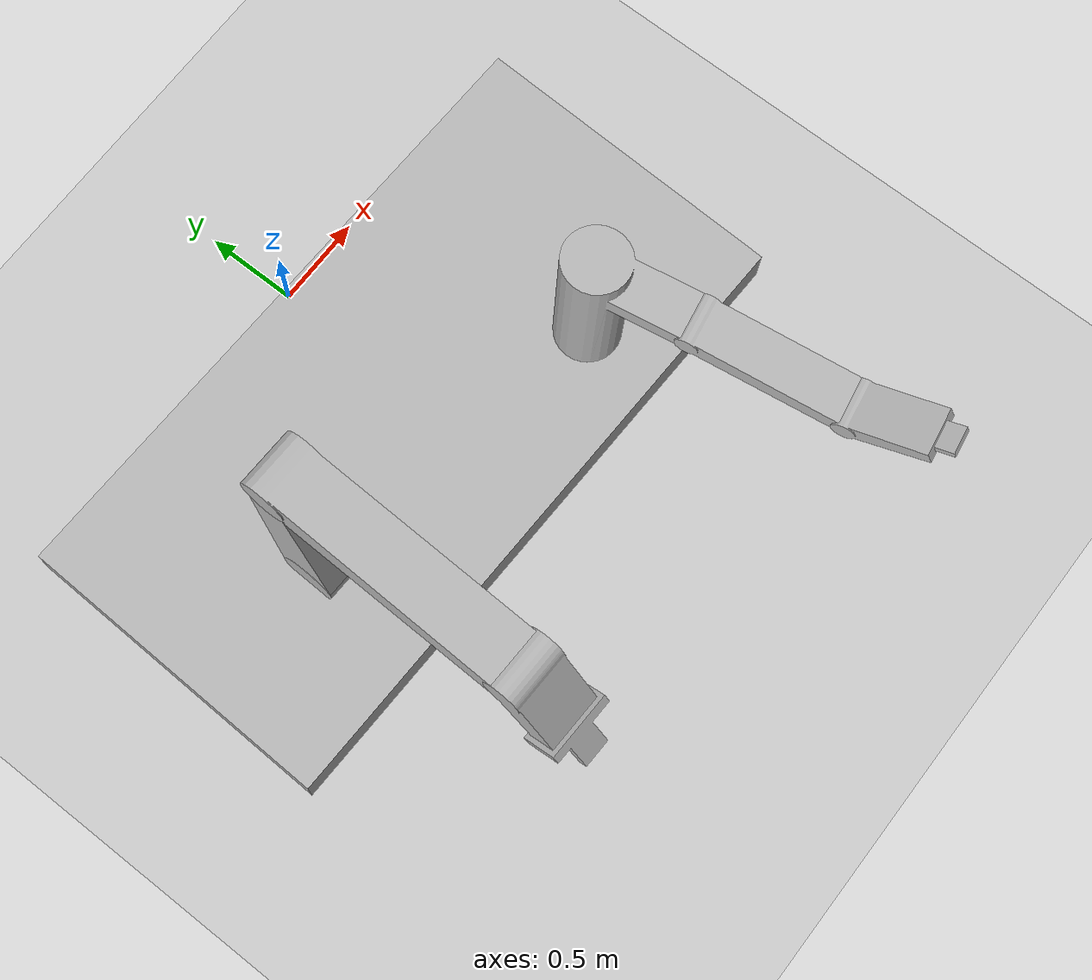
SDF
<sdf version="1.6">
 <world name="default">
  <light name="sun" type="directional">
   <pose>0 0 10 0 -0 0</pose>
   <diffuse>0.8 0.8 0.8 1</diffuse>
   <specular>0.2 0.2 0.2 1</specular>
   <attenuation>
    <range>1000</range>
    <constant>0.9</constant>
    <linear>0.01</linear>
    <quadratic>0.001</quadratic>
   </attenuation>
   <direction>-0.5 0.1 -0.9</direction>
  </light>
  <gravity>0 0 -9.8</gravity>
  <magnetic_field>6e-06 2.3e-05 -4.2e-05</magnetic_field>
  <atmosphere type="adiabatic"/>
  <physics name="default_physics" default="0" type="ode">
   <max_step_size>0.001</max_step_size>
   <real_time_factor>1</real_time_factor>
   <real_time_update_rate>1000</real_time_update_rate>
  </physics>
  <scene><ambient>0.4 0.4 0.4 1</ambient><background>0.7 0.7 0.7 1</background><shadows>1</shadows></scene>
  <spherical_coordinates>
   <surface_model>EARTH_WGS84</surface_model>
   <latitude_deg>0</latitude_deg>
   <longitude_deg>0</longitude_deg>
   <elevation>0</elevation>
   <heading_deg>0</heading_deg>
  </spherical_coordinates>
  <model name="my_robot_description">
   <link name="base_link">
    <inertial>
     <pose>-0.002316 -0.002634 0.000848 0 -0 0</pose>
     <mass>100.24</mass>
     <inertia>
      <ixx>2.31977</ixx>
      <ixy>-0.254733</ixy>
      <ixz>0.08206</ixz>
      <iyy>2.25405</iyy>
      <iyz>0.0933259</iyz>
      <izz>2.51369</izz>
     </inertia>
    </inertial>
    <collision name="base_link_collision">
     <geometry>
      <mesh><scale>1 1 1</scale><uri>/home/chuyu/robotic/src/my_robot_description/meshes/base_link.STL</uri></mesh>
     </geometry>
    </collision>
    <collision name="base_link_fixed_joint_lump__basejoint_collision_1">
     <pose>-0.967213 -1.1 0.354356 1.5708 -0 1.5708</pose>
     <geometry>
      <mesh><scale>1 1 1</scale><uri>/home/chuyu/robotic/src/my_robot_description/meshes/basejoint.STL</uri></mesh>
     </geometry>
    </collision>
    <visual name="base_link_visual">
     <geometry>
      <mesh><scale>1 1 1</scale><uri>/home/chuyu/robotic/src/my_robot_description/meshes/base_link.STL</uri></mesh>
     </geometry>
    </visual>
    <visual name="base_link_fixed_joint_lump__basejoint_visual_1">
     <pose>-0.967213 -1.1 0.354356 1.5708 -0 1.5708</pose>
     <geometry>
      <mesh><scale>1 1 1</scale><uri>/home/chuyu/robotic/src/my_robot_description/meshes/basejoint.STL</uri></mesh>
     </geometry>
    </visual>
   </link>
   <link name="sensor_link1">
    <pose>-0.967213 -1.1 0.354356 1.5708 -0.141193 -1.5708</pose>
    <inertial>
     <mass>0.8</mass>
     <inertia><ixx>1</ixx><ixy>0</ixy><ixz>0</ixz><iyy>1</iyy><iyz>0</iyz><izz>1</izz></inertia>
    </inertial>
    <collision name="sensor_link1_collision">
     <geometry>
      <mesh>
       <scale>1 1 1</scale>
       <uri>/home/chuyu/robotic/src/my_robot_description/meshes/sensor_link1.STL</uri>
      </mesh>
     </geometry>
    </collision>
    <visual name="sensor_link1_visual">
     <geometry>
      <mesh>
       <scale>1 1 1</scale>
       <uri>/home/chuyu/robotic/src/my_robot_description/meshes/sensor_link1.STL</uri>
      </mesh>
     </geometry>
    </visual>
   </link>
   <joint name="sensor_joint1" type="revolute">
    <child>sensor_link1</child>
    <parent>base_link</parent>
    <axis>
     <xyz>-1 -1e-06 -7e-06</xyz>
     <limit><lower>-3.142</lower><upper>3.142</upper><effort>30</effort><velocity>0.5</velocity></limit>
     <dynamics><spring_reference>0</spring_reference><spring_stiffness>0</spring_stiffness></dynamics>
     <use_parent_model_frame>1</use_parent_model_frame>
    </axis>
   </joint>
   <link name="sensor_link2">
    <pose>-0.967221 -0.949313 1.39884 1.57097 1.52871 -1.57062</pose>
    <inertial>
     <mass>1.11</mass>
     <inertia><ixx>1</ixx><ixy>0</ixy><ixz>0</ixz><iyy>1</iyy><iyz>0</iyz><izz>1</izz></inertia>
    </inertial>
    <collision name="sensor_link2_collision">
     <geometry>
      <mesh>
       <scale>1 1 1</scale>
       <uri>/home/chuyu/robotic/src/my_robot_description/meshes/sensor_link2.STL</uri>
      </mesh>
     </geometry>
    </collision>
    <visual name="sensor_link2_visual">
     <geometry>
      <mesh>
       <scale>1 1 1</scale>
       <uri>/home/chuyu/robotic/src/my_robot_description/meshes/sensor_link2.STL</uri>
      </mesh>
     </geometry>
    </visual>
   </link>
   <joint name="sensor_joint2" type="revolute">
    <child>sensor_link2</child>
    <parent>sensor_link1</parent>
    <axis>
     <xyz>-1 -1e-06 -7e-06</xyz>
     <limit><lower>-3.142</lower><upper>3.142</upper><effort>30</effort><velocity>0.5</velocity></limit>
     <dynamics><spring_reference>0</spring_reference><spring_stiffness>0</spring_stiffness></dynamics>
     <use_parent_model_frame>1</use_parent_model_frame>
    </axis>
   </joint>
   <link name="sensor_link3">
    <pose>-0.96722 -2.29062 1.45533 -1.57078 -0.642893 -1.5708</pose>
    <inertial>
     <mass>0.31</mass>
     <inertia><ixx>1</ixx><ixy>0</ixy><ixz>0</ixz><iyy>1</iyy><iyz>0</iyz><izz>1</izz></inertia>
    </inertial>
    <collision name="sensor_link3_collision">
     <geometry>
      <mesh>
       <scale>1 1 1</scale>
       <uri>/home/chuyu/robotic/src/my_robot_description/meshes/sensor_link3.STL</uri>
      </mesh>
     </geometry>
    </collision>
    <visual name="sensor_link3_visual">
     <geometry>
      <mesh>
       <scale>1 1 1</scale>
       <uri>/home/chuyu/robotic/src/my_robot_description/meshes/sensor_link3.STL</uri>
      </mesh>
     </geometry>
    </visual>
   </link>
   <joint name="sensor_joint3" type="revolute">
    <child>sensor_link3</child>
    <parent>sensor_link2</parent>
    <axis>
     <xyz>1 5e-06 1.3e-05</xyz>
     <limit><lower>-3.142</lower><upper>3.142</upper><effort>30</effort><velocity>0.5</velocity></limit>
     <dynamics><spring_reference>0</spring_reference><spring_stiffness>0</spring_stiffness></dynamics>
     <use_parent_model_frame>1</use_parent_model_frame>
    </axis>
   </joint>
   <link name="sensor_endeffector">
    <pose>-0.932215 -2.48045 1.20191 2.49911 -1.5e-05 2e-06</pose>
    <inertial>
     <mass>0.075</mass>
     <inertia><ixx>1</ixx><ixy>0</ixy><ixz>0</ixz><iyy>1</iyy><iyz>0</iyz><izz>1</izz></inertia>
    </inertial>
    <collision name="sensor_endeffector_collision">
     <geometry>
      <mesh>
       <scale>1 1 1</scale>
       <uri>/home/chuyu/robotic/src/my_robot_description/meshes/sensor_endeffector.STL</uri>
      </mesh>
     </geometry>
    </collision>
    <visual name="sensor_endeffector_visual">
     <geometry>
      <mesh>
       <scale>1 1 1</scale>
       <uri>/home/chuyu/robotic/src/my_robot_description/meshes/sensor_endeffector.STL</uri>
      </mesh>
     </geometry>
    </visual>
   </link>
   <joint name="sensor_joint4" type="prismatic">
    <child>sensor_endeffector</child>
    <parent>sensor_link3</parent>
    <axis>
     <xyz>1.4e-05 -0.599184 -0.800611</xyz>
     <limit><lower>0</lower><upper>0.1</upper><effort>30</effort><velocity>0.5</velocity></limit>
     <dynamics><spring_reference>0</spring_reference><spring_stiffness>0</spring_stiffness></dynamics>
     <use_parent_model_frame>1</use_parent_model_frame>
    </axis>
   </joint>
   <link name="water_link1">
    <pose>0.78379 -1.3125 0.2 0 -0 1.774</pose>
    <inertial>
     <mass>1.35</mass>
     <inertia><ixx>1</ixx><ixy>0</ixy><ixz>0</ixz><iyy>1</iyy><iyz>0</iyz><izz>1</izz></inertia>
    </inertial>
    <collision name="water_link1_collision">
     <geometry>
      <mesh>
       <scale>1 1 1</scale>
       <uri>/home/chuyu/robotic/src/my_robot_description/meshes/water_link1.STL</uri>
      </mesh>
     </geometry>
    </collision>
    <visual name="water_link1_visual">
     <geometry>
      <mesh>
       <scale>1 1 1</scale>
       <uri>/home/chuyu/robotic/src/my_robot_description/meshes/water_link1.STL</uri>
      </mesh>
     </geometry>
    </visual>
   </link>
   <joint name="water_joint1" type="revolute">
    <child>water_link1</child>
    <parent>base_link</parent>
    <axis>
     <xyz>0 0 1</xyz>
     <limit><lower>-1.047</lower><upper>1.047</upper><effort>30</effort><velocity>0.5</velocity></limit>
     <dynamics><spring_reference>0</spring_reference><spring_stiffness>0</spring_stiffness></dynamics>
     <use_parent_model_frame>1</use_parent_model_frame>
    </axis>
   </joint>
   <link name="water_link2">
    <pose>0.892262 -1.83894 1.05 1.5708 0.078326 -1.3676</pose>
    <inertial>
     <mass>0.285</mass>
     <inertia><ixx>1</ixx><ixy>0</ixy><ixz>0</ixz><iyy>1</iyy><iyz>0</iyz><izz>1</izz></inertia>
    </inertial>
    <collision name="water_link2_collision">
     <geometry>
      <mesh>
       <scale>1 1 1</scale>
       <uri>/home/chuyu/robotic/src/my_robot_description/meshes/water_link2.STL</uri>
      </mesh>
     </geometry>
    </collision>
    <visual name="water_link2_visual">
     <geometry>
      <mesh>
       <scale>1 1 1</scale>
       <uri>/home/chuyu/robotic/src/my_robot_description/meshes/water_link2.STL</uri>
      </mesh>
     </geometry>
    </visual>
   </link>
   <joint name="water_joint2" type="revolute">
    <child>water_link2</child>
    <parent>water_link1</parent>
    <axis>
     <xyz>-0.979427 -0.201801 -4e-06</xyz>
     <limit><lower>-1e+16</lower><upper>1e+16</upper></limit>
     <dynamics><spring_reference>0</spring_reference><spring_stiffness>0</spring_stiffness></dynamics>
     <use_parent_model_frame>1</use_parent_model_frame>
    </axis>
   </joint>
   <link name="water_link3">
    <pose>1.05623 -2.63477 0.987563 -1.99806 -4e-06 0.2032</pose>
    <inertial>
     <mass>0.159</mass>
     <inertia><ixx>1</ixx><ixy>0</ixy><ixz>0</ixz><iyy>1</iyy><iyz>0</iyz><izz>1</izz></inertia>
    </inertial>
    <collision name="water_link3_collision">
     <geometry>
      <mesh>
       <scale>1 1 1</scale>
       <uri>/home/chuyu/robotic/src/my_robot_description/meshes/water_link3.STL</uri>
      </mesh>
     </geometry>
    </collision>
    <visual name="water_link3_visual">
     <geometry>
      <mesh>
       <scale>1 1 1</scale>
       <uri>/home/chuyu/robotic/src/my_robot_description/meshes/water_link3.STL</uri>
      </mesh>
     </geometry>
    </visual>
   </link>
   <joint name="water_joint3" type="revolute">
    <child>water_link3</child>
    <parent>water_link2</parent>
    <axis>
     <xyz>0.979426 0.201804 4e-06</xyz>
     <limit><lower>-1.5707</lower><upper>1.5707</upper><effort>30</effort><velocity>0.5</velocity></limit>
     <dynamics><spring_reference>0</spring_reference><spring_stiffness>0</spring_stiffness></dynamics>
     <use_parent_model_frame>1</use_parent_model_frame>
    </axis>
   </joint>
   <static>0</static>
   <plugin name="gazebo_ros_control" filename="libgazebo_ros_control.so">
    <robotNamespace>/</robotNamespace>
   </plugin>
   <pose>-0.006769 -0.038179 1e-06 -2e-06 -0 -0.033335</pose>
  </model>
  <model name="soil">
   <pose>-3.11641 -1.97678 0 0 0 -3.14119</pose>
   <static>1</static>
   <link name="link">
    <collision name="collision">
     <geometry><plane><normal>0 0 1</normal><size>100 100</size></plane></geometry>
     <surface><friction><ode><mu>100</mu><mu2>50</mu2></ode></friction></surface>
    </collision>
    <visual name="visual">
     <cast_shadows>0</cast_shadows>
     <geometry><plane><normal>0 0 1</normal><size>100 100</size></plane></geometry>
     <material>
      <script>
       <uri>model://soil/materials/scripts</uri>
       <uri>model://soil/materials/textures</uri>
       <name>soil/Image</name>
      </script>
     </material>
    </visual>
   </link>
  </model>
 </world>
</sdf>
